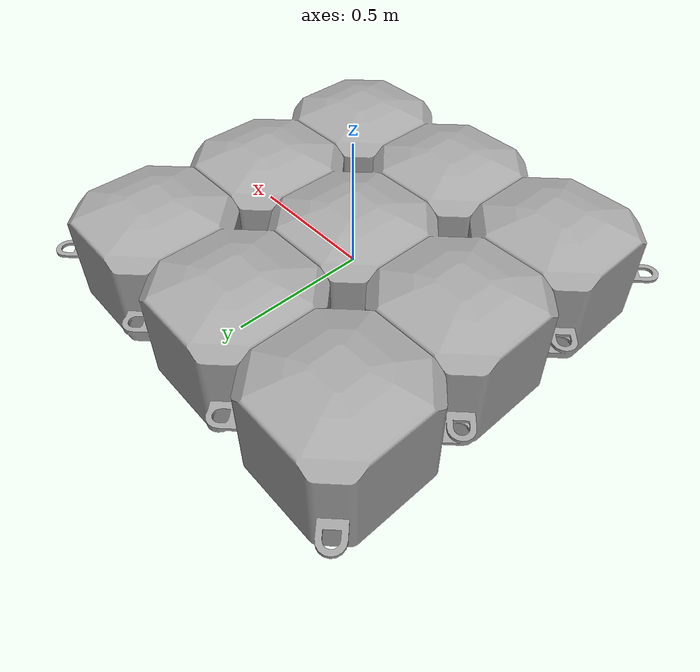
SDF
<?xml version="1.0"?>
<sdf version="1.5">
  <model name="dock_block_3x3">
    <static>true</static>
    <pose>0 0 0.25 0 0 0</pose>
    <link name="link">
      <collision name="collision">
        <pose>0 0 -0.2 0 0 0</pose>
        <geometry>
          <box>
            <size>1.5 1.5 0.4</size>
          </box>
        </geometry>
      </collision>
      <visual name="visual">
        <geometry>
          <mesh>
            <uri>file://dock_block_3x3/mesh/dock_block_3x3.dae</uri>
          </mesh>
        </geometry>
      </visual>
    </link>
  </model>
</sdf>
